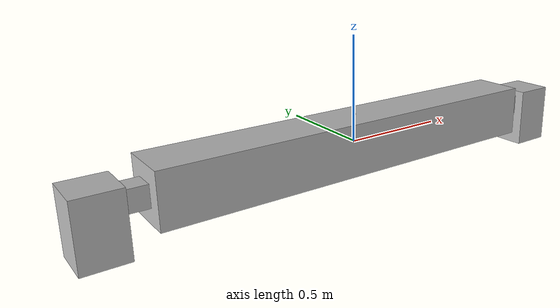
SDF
<?xml version='1.0'?>
<sdf version='1.5'>
  <model name="obstacle">
    <static>false</static>

    <link name="obstacle">
      <pose>0 0 0 0 0 0</pose>
        <inertial>
          <inertia>
            <ixx>0.052083333</ixx>
            <ixy>0</ixy>
            <ixz>0</ixz>
            <iyy>1.692708333</iyy>
            <iyz>0</iyz>
            <izz>1.692708333</izz>
          </inertia>
          <mass>5</mass>
        </inertial>

        <collision name="my_collision">
            <geometry>
             <box>
             <size>2.0 0.25 0.25</size>
             </box>
            </geometry>

        </collision>

        <visual name="my_visual">
            <geometry>
             <box>
             <size>2.0 0.25 0.25</size>
             </box>
            </geometry>
        </visual>
    </link>

    <link name="payload_link_1">
      <pose>1.05 0 0 0 0 0</pose>
        <inertial>
          <inertia>
            <ixx>0.0000666</ixx>
            <ixy>0</ixy>
            <ixz>0</ixz>
            <iyy>0.0000666</iyy>
            <iyz>0</iyz>
            <izz>0.0000666</izz>
          </inertia>
          <mass>0.04</mass>
        </inertial>

        <collision name="payload_link_1_collision">
            <geometry>
             <box>
             <size>0.1 0.1 0.1</size>
             </box>
            </geometry>

        </collision>

        <visual name="payload_link_1_visual">
            <geometry>
             <box>
             <size>0.1 0.1 0.1</size>
             </box>
            </geometry>
        </visual>
    </link>

    <joint name="payload_joint_1" type="revolute">
      <parent>obstacle</parent>
      <child>payload_link_1</child>
      <axis>
        <xyz>0 0 1</xyz>
        <limit>
          <upper>0</upper>
          <lower>0</lower>
        </limit>
      </axis>
      <sensor name="force_torque" type="force_torque">
        <update_rate>200</update_rate>
        <always_on>true</always_on>
      </sensor>
    </joint>

    <link name="payload_link_2">
      <pose>-1.05 0 0 0 0 0</pose>
        <inertial>
          <inertia>
            <ixx>0.0000666</ixx>
            <ixy>0</ixy>
            <ixz>0</ixz>
            <iyy>0.0000666</iyy>
            <iyz>0</iyz>
            <izz>0.0000666</izz>
          </inertia>
          <mass>0.04</mass>
        </inertial>

        <collision name="payload_link_2_collision">
            <geometry>
             <box>
             <size>0.1 0.1 0.1</size>
             </box>
            </geometry>

        </collision>

        <visual name="payload_link_2_visual">
            <geometry>
             <box>
             <size>0.1 0.1 0.1</size>
             </box>
            </geometry>
        </visual>
    </link>

    <joint name="payload_joint_2" type="revolute">
      <parent>obstacle</parent>
      <child>payload_link_2</child>
      <axis>
        <xyz>0 0 1</xyz>
        <limit>
          <upper>0</upper>
          <lower>0</lower>
        </limit>
      </axis>
      <sensor name="force_torque" type="force_torque">
        <update_rate>200</update_rate>
        <always_on>true</always_on>
      </sensor>
    </joint>

    <link name="robot_link_1">
      <pose>1.2 0 -0.07 0 0 0</pose>
        <inertial>
          <inertia>
            <ixx>0.004</ixx>
            <ixy>0</ixy>
            <ixz>0</ixz>
            <iyy>0.004</iyy>
            <iyz>0</iyz>
            <izz>0.0032</izz>
          </inertia>
          <mass>0.04</mass>
        </inertial>

        <collision name="robot_1_collision">
            <geometry>
             <box>
             <size>0.2 0.2 0.3</size>
             </box>
            </geometry>

        </collision>

        <visual name="robot_1_visual">
            <geometry>
             <box>
             <size>0.2 0.2 0.3</size>
             </box>
            </geometry>
        </visual>
    </link>

    <joint name="robot_joint_1" type="fixed">
      <parent>payload_link_2</parent>
      <child>robot_link_2</child>
      <pose>0.00 0.0 0.0 0 0.0 0.0</pose>
    </joint>
    <link name="robot_link_2">
      <pose>-1.2 0 -0.07 0 0 0</pose>
        <inertial>
          <inertia>
            <ixx>0.004</ixx>
            <ixy>0</ixy>
            <ixz>0</ixz>
            <iyy>0.004</iyy>
            <iyz>0</iyz>
            <izz>0.0032</izz>
          </inertia>
          <mass>0.04</mass>
        </inertial>

        <collision name="robot_2_collision">
            <geometry>
             <box>
             <size>0.2 0.2 0.3</size>
             </box>
            </geometry>

        </collision>

        <visual name="robot_2_visual">
            <geometry>
             <box>
             <size>0.2 0.2 0.3</size>
             </box>
            </geometry>
        </visual>
    </link>

    <joint name="robot_joint_2" type="fixed">
      <parent>payload_link_1</parent>
      <child>robot_link_1</child>
      <pose>0.00 0.0 0.0 0 0.0 0.0</pose>
    </joint>

    <link name="payload_IMU">
      <pose>0 0 0.13 0 0 0</pose>
        <inertial>
          <inertia>
            <ixx>0.000004165</ixx>
            <ixy>0</ixy>
            <ixz>0</ixz>
            <iyy>0.000185</iyy>
            <iyz>0</iyz>
            <izz>0.000185</izz>
          </inertia>
          <mass>0.0001</mass>
        </inertial>

        <collision name="payload_IMU_collision">
            <geometry>
             <box>
             <size>0.01 0.01 0.01</size>
             </box>
            </geometry>

        </collision>

        <visual name="payload_IMU_visual">
            <geometry>
             <box>
             <size>0.01 0.01 0.01</size>
             </box>
            </geometry>
        </visual>

        <sensor name="IMU" type="imu">
          <plugin name="IMU_plugin" filename="libgazebo_ros_imu_sensor.so">
            <always_on>true</always_on>
              <topicName>/IMU</topicName>
              <updateRateHZ>50</updateRateHZ>
              <frameName>payload_IMU</frameName>
          </plugin>
        </sensor>
    </link>

    <joint name="payload_imu_joint" type="fixed">
      <parent>obstacle</parent>
      <child>payload_IMU</child>
      <pose>0.00 0.0 0.0 0 0.0 0.0</pose>
    </joint>

    <plugin name="p3d_base_controller" filename="libgazebo_ros_p3d.so">
      <alwaysOn>true</alwaysOn>
      <updateRate>50.0</updateRate>
      <bodyName>payload_IMU</bodyName>
      <topicName>position</topicName>
      <gaussianNoise>0.01</gaussianNoise>
      <frameName>world</frameName>
      <xyzOffsets>0 0 0</xyzOffsets>
      <rpyOffsets>0 0 0</rpyOffsets>
    </plugin>

    <plugin name="ft_sensor" filename="libgazebo_ros_ft_sensor.so">
      <always_on>true</always_on>
      <updateRate>200.0</updateRate>
      <topicName>/payload_joint_1_ft_sensor</topicName>
      <jointName>payload_joint_1</jointName>
    </plugin>
    <plugin name="ft_sensor" filename="libgazebo_ros_ft_sensor.so">
      <always_on>true</always_on>
      <updateRate>200.0</updateRate>
      <topicName>/payload_joint_2_ft_sensor</topicName>
      <jointName>payload_joint_2</jointName>
    </plugin>

  </model>
</sdf>
